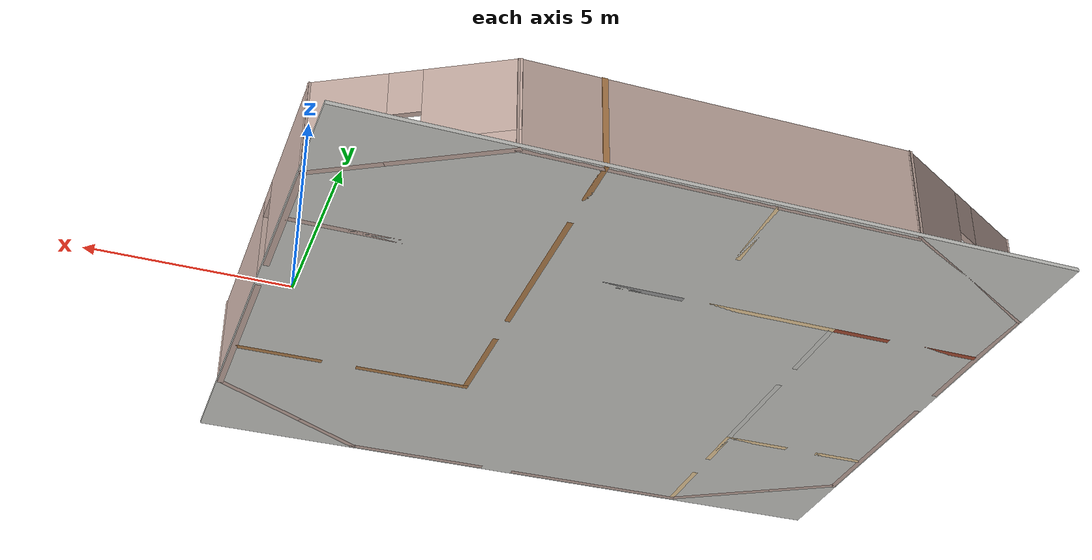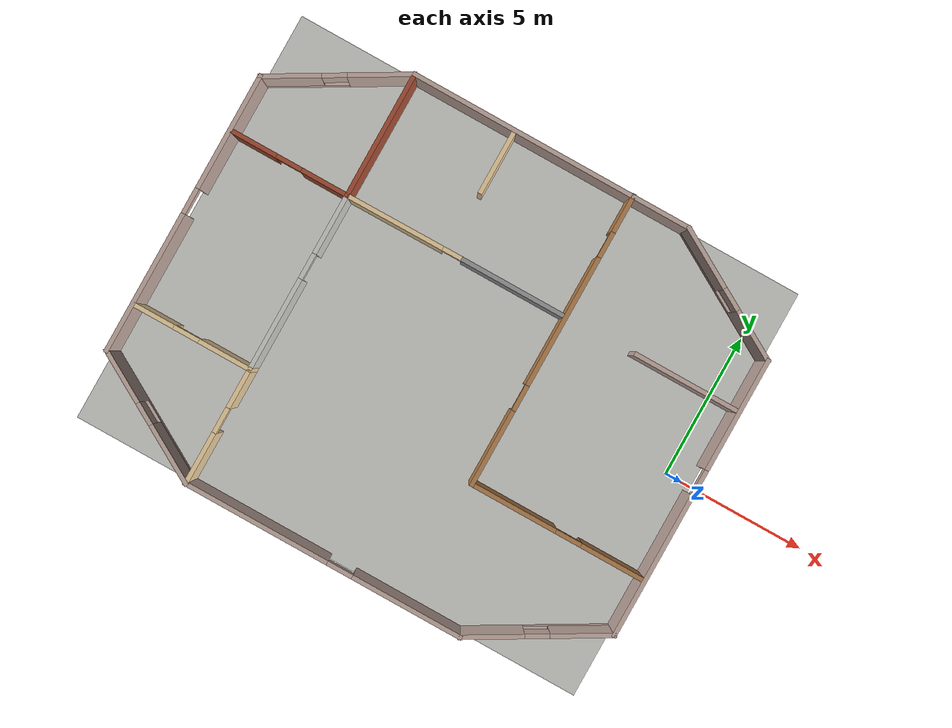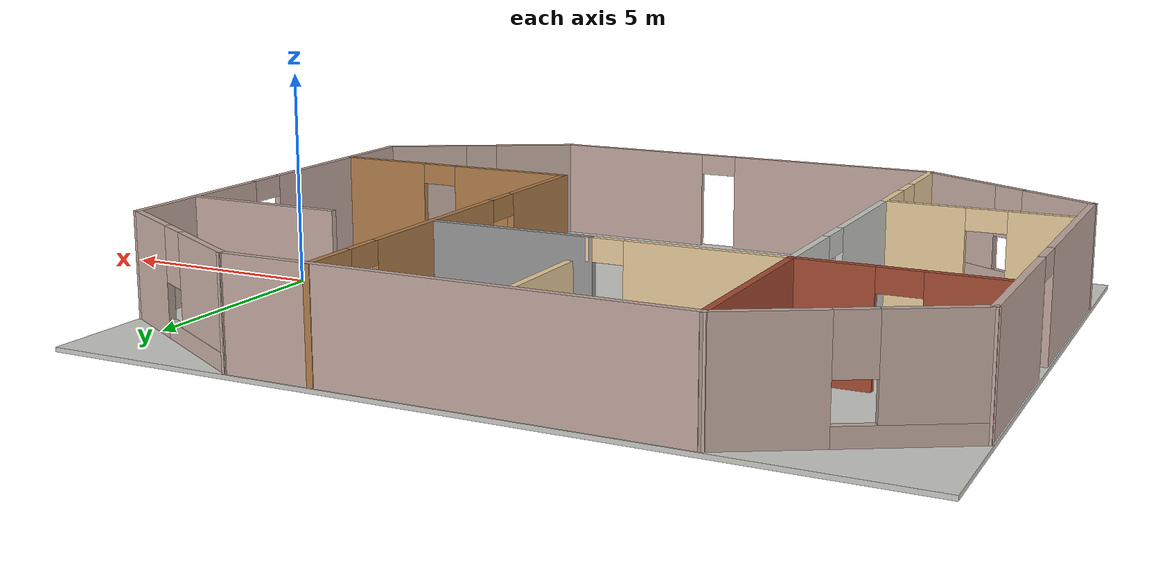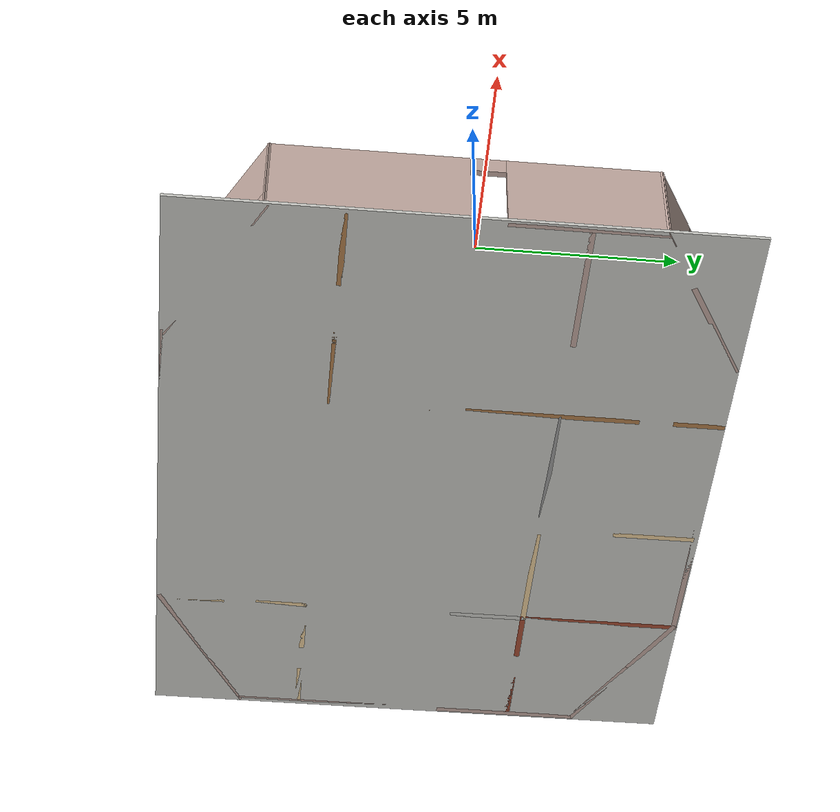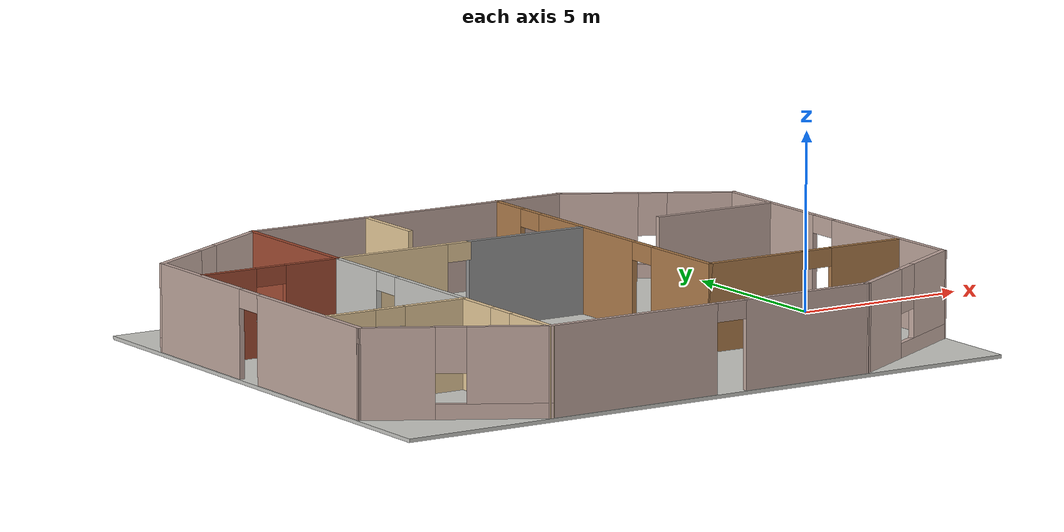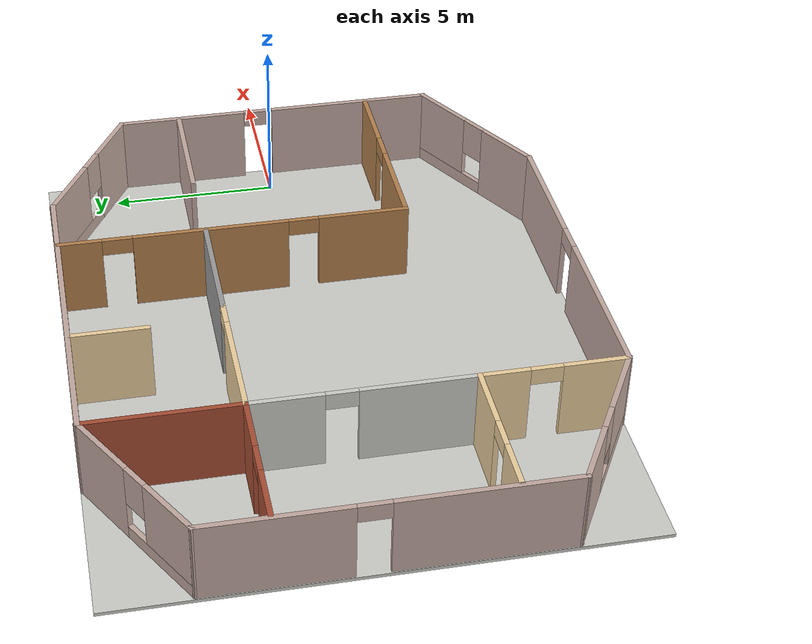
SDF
<?xml version='1.0'?>
<sdf version='1.6'>
  <model name='Pentagon'>
    <pose frame=''>-8.32743 -0.276895 0 0 -0 0</pose>
    <link name='Floor_16'>
      <collision name='Floor_16_Collision'>
        <geometry>
          <box>
            <size>18.4553 14.9049 0.1</size>
          </box>
        </geometry>
        <pose frame=''>0 0 0.05 0 -0 0</pose>
      </collision>
      <visual name='Floor_16_Visual'>
        <pose frame=''>0 0 0.05 0 -0 0</pose>
        <geometry>
          <box>
            <size>18.4553 14.9049 0.1</size>
          </box>
        </geometry>
        <material>
          <script>
            <uri>file://media/materials/scripts/gazebo.material</uri>
            <name>Gazebo/CeilingTiled</name>
          </script>
          <ambient>1 1 1 1</ambient>
        </material>
      </visual>
      <pose frame=''>1e-06 0 0 0 -0 0</pose>
    </link>
    <link name='Wall_22'>
      <pose frame=''>-9.12522 0 0 0 0 -1.5708</pose>
      <visual name='Wall_22_Visual_0'>
        <pose frame=''>-2.94929 0 1.25 0 -0 0</pose>
        <geometry>
          <box>
            <size>4.10142 0.15 2.5</size>
          </box>
        </geometry>
        <material>
          <script>
            <uri>file://media/materials/scripts/gazebo.material</uri>
            <name>Gazebo/Grey</name>
          </script>
          <ambient>0.760784 0.662745 0.627451 1</ambient>
        </material>
      </visual>
      <collision name='Wall_22_Collision_0'>
        <geometry>
          <box>
            <size>4.10142 0.15 2.5</size>
          </box>
        </geometry>
        <pose frame=''>-2.94929 0 1.25 0 -0 0</pose>
      </collision>
      <visual name='Wall_22_Visual_1'>
        <pose frame=''>2.50071 0 1.25 0 -0 0</pose>
        <geometry>
          <box>
            <size>4.99857 0.15 2.5</size>
          </box>
        </geometry>
        <material>
          <script>
            <uri>file://media/materials/scripts/gazebo.material</uri>
            <name>Gazebo/Grey</name>
          </script>
          <ambient>0.760784 0.662745 0.627451 1</ambient>
        </material>
      </visual>
      <collision name='Wall_22_Collision_1'>
        <geometry>
          <box>
            <size>4.99857 0.15 2.5</size>
          </box>
        </geometry>
        <pose frame=''>2.50071 0 1.25 0 -0 0</pose>
      </collision>
      <visual name='Wall_22_Visual_2'>
        <pose frame=''>-0.448575 0 2.25 0 -0 0</pose>
        <geometry>
          <box>
            <size>0.9 0.15 0.5</size>
          </box>
        </geometry>
        <material>
          <script>
            <uri>file://media/materials/scripts/gazebo.material</uri>
            <name>Gazebo/Grey</name>
          </script>
          <ambient>0.760784 0.662745 0.627451 1</ambient>
        </material>
      </visual>
      <collision name='Wall_22_Collision_2'>
        <geometry>
          <box>
            <size>0.9 0.15 0.5</size>
          </box>
        </geometry>
        <pose frame=''>-0.448575 0 2.25 0 -0 0</pose>
      </collision>
    </link>
    <link name='Wall_24'>
      <pose frame=''>-7.02511 -6.1375 0 0 0 -0.523599</pose>
      <visual name='Wall_24_Visual_0'>
        <pose frame=''>-1.50611 0 1.25 0 -0 0</pose>
        <geometry>
          <box>
            <size>1.98778 0.15 2.5</size>
          </box>
        </geometry>
        <material>
          <script>
            <uri>file://media/materials/scripts/gazebo.material</uri>
            <name>Gazebo/Grey</name>
          </script>
          <ambient>0.760784 0.662745 0.627451 1</ambient>
        </material>
      </visual>
      <collision name='Wall_24_Collision_0'>
        <geometry>
          <box>
            <size>1.98778 0.15 2.5</size>
          </box>
        </geometry>
        <pose frame=''>-1.50611 0 1.25 0 -0 0</pose>
      </collision>
      <visual name='Wall_24_Visual_1'>
        <pose frame=''>0.993891 0 0.25 0 -0 0</pose>
        <geometry>
          <box>
            <size>3.01222 0.15 0.5</size>
          </box>
        </geometry>
        <material>
          <script>
            <uri>file://media/materials/scripts/gazebo.material</uri>
            <name>Gazebo/Grey</name>
          </script>
          <ambient>0.760784 0.662745 0.627451 1</ambient>
        </material>
      </visual>
      <collision name='Wall_24_Collision_1'>
        <geometry>
          <box>
            <size>3.01222 0.15 0.5</size>
          </box>
        </geometry>
        <pose frame=''>0.993891 0 0.25 0 -0 0</pose>
      </collision>
      <visual name='Wall_24_Visual_2'>
        <pose frame=''>1.39389 0 1.5 0 -0 0</pose>
        <geometry>
          <box>
            <size>2.21222 0.15 2</size>
          </box>
        </geometry>
        <material>
          <script>
            <uri>file://media/materials/scripts/gazebo.material</uri>
            <name>Gazebo/Grey</name>
          </script>
          <ambient>0.760784 0.662745 0.627451 1</ambient>
        </material>
      </visual>
      <collision name='Wall_24_Collision_2'>
        <geometry>
          <box>
            <size>2.21222 0.15 2</size>
          </box>
        </geometry>
        <pose frame=''>1.39389 0 1.5 0 -0 0</pose>
      </collision>
      <visual name='Wall_24_Visual_3'>
        <pose frame=''>-0.112218 0 1.9 0 -0 0</pose>
        <geometry>
          <box>
            <size>0.8 0.15 1.2</size>
          </box>
        </geometry>
        <material>
          <script>
            <uri>file://media/materials/scripts/gazebo.material</uri>
            <name>Gazebo/Grey</name>
          </script>
          <ambient>0.760784 0.662745 0.627451 1</ambient>
        </material>
      </visual>
      <collision name='Wall_24_Collision_3'>
        <geometry>
          <box>
            <size>0.8 0.15 1.2</size>
          </box>
        </geometry>
        <pose frame=''>-0.112218 0 1.9 0 -0 0</pose>
      </collision>
    </link>
    <link name='Wall_25'>
      <pose frame=''>1e-06 -7.35 0 0 -0 0</pose>
      <visual name='Wall_25_Visual_0'>
        <pose frame=''>-2.41987 0 1.25 0 -0 0</pose>
        <geometry>
          <box>
            <size>5.16027 0.15 2.5</size>
          </box>
        </geometry>
        <material>
          <script>
            <uri>file://media/materials/scripts/gazebo.material</uri>
            <name>Gazebo/Grey</name>
          </script>
          <ambient>0.760784 0.662745 0.627451 1</ambient>
        </material>
      </visual>
      <collision name='Wall_25_Collision_0'>
        <geometry>
          <box>
            <size>5.16027 0.15 2.5</size>
          </box>
        </geometry>
        <pose frame=''>-2.41987 0 1.25 0 -0 0</pose>
      </collision>
      <visual name='Wall_25_Visual_1'>
        <pose frame=''>3.03013 0 1.25 0 -0 0</pose>
        <geometry>
          <box>
            <size>3.93973 0.15 2.5</size>
          </box>
        </geometry>
        <material>
          <script>
            <uri>file://media/materials/scripts/gazebo.material</uri>
            <name>Gazebo/Grey</name>
          </script>
          <ambient>0.760784 0.662745 0.627451 1</ambient>
        </material>
      </visual>
      <collision name='Wall_25_Collision_1'>
        <geometry>
          <box>
            <size>3.93973 0.15 2.5</size>
          </box>
        </geometry>
        <pose frame=''>3.03013 0 1.25 0 -0 0</pose>
      </collision>
      <visual name='Wall_25_Visual_2'>
        <pose frame=''>0.610269 0 2.25 0 -0 0</pose>
        <geometry>
          <box>
            <size>0.9 0.15 0.5</size>
          </box>
        </geometry>
        <material>
          <script>
            <uri>file://media/materials/scripts/gazebo.material</uri>
            <name>Gazebo/Grey</name>
          </script>
          <ambient>0.760784 0.662745 0.627451 1</ambient>
        </material>
      </visual>
      <collision name='Wall_25_Collision_2'>
        <geometry>
          <box>
            <size>0.9 0.15 0.5</size>
          </box>
        </geometry>
        <pose frame=''>0.610269 0 2.25 0 -0 0</pose>
      </collision>
    </link>
    <link name='Wall_26'>
      <pose frame=''>7.02511 -6.1375 0 0 -0 0.523599</pose>
      <visual name='Wall_26_Visual_0'>
        <pose frame=''>-1.44732 0 1.25 0 -0 0</pose>
        <geometry>
          <box>
            <size>2.10536 0.15 2.5</size>
          </box>
        </geometry>
        <material>
          <script>
            <uri>file://media/materials/scripts/gazebo.material</uri>
            <name>Gazebo/Grey</name>
          </script>
          <ambient>0.760784 0.662745 0.627451 1</ambient>
        </material>
      </visual>
      <collision name='Wall_26_Collision_0'>
        <geometry>
          <box>
            <size>2.10536 0.15 2.5</size>
          </box>
        </geometry>
        <pose frame=''>-1.44732 0 1.25 0 -0 0</pose>
      </collision>
      <visual name='Wall_26_Visual_1'>
        <pose frame=''>1.05268 0 0.25 0 -0 0</pose>
        <geometry>
          <box>
            <size>2.89464 0.15 0.5</size>
          </box>
        </geometry>
        <material>
          <script>
            <uri>file://media/materials/scripts/gazebo.material</uri>
            <name>Gazebo/Grey</name>
          </script>
          <ambient>0.760784 0.662745 0.627451 1</ambient>
        </material>
      </visual>
      <collision name='Wall_26_Collision_1'>
        <geometry>
          <box>
            <size>2.89464 0.15 0.5</size>
          </box>
        </geometry>
        <pose frame=''>1.05268 0 0.25 0 -0 0</pose>
      </collision>
      <visual name='Wall_26_Visual_2'>
        <pose frame=''>1.45268 0 1.5 0 -0 0</pose>
        <geometry>
          <box>
            <size>2.09464 0.15 2</size>
          </box>
        </geometry>
        <material>
          <script>
            <uri>file://media/materials/scripts/gazebo.material</uri>
            <name>Gazebo/Grey</name>
          </script>
          <ambient>0.760784 0.662745 0.627451 1</ambient>
        </material>
      </visual>
      <collision name='Wall_26_Collision_2'>
        <geometry>
          <box>
            <size>2.09464 0.15 2</size>
          </box>
        </geometry>
        <pose frame=''>1.45268 0 1.5 0 -0 0</pose>
      </collision>
      <visual name='Wall_26_Visual_3'>
        <pose frame=''>0.005362 0 1.9 0 -0 0</pose>
        <geometry>
          <box>
            <size>0.8 0.15 1.2</size>
          </box>
        </geometry>
        <material>
          <script>
            <uri>file://media/materials/scripts/gazebo.material</uri>
            <name>Gazebo/Grey</name>
          </script>
          <ambient>0.760784 0.662745 0.627451 1</ambient>
        </material>
      </visual>
      <collision name='Wall_26_Collision_3'>
        <geometry>
          <box>
            <size>0.8 0.15 1.2</size>
          </box>
        </geometry>
        <pose frame=''>0.005362 0 1.9 0 -0 0</pose>
      </collision>
    </link>
    <link name='Wall_27'>
      <pose frame=''>9.12522 0 0 0 -0 1.5708</pose>
      <visual name='Wall_27_Visual_0'>
        <pose frame=''>-2.45419 0 1.25 0 -0 0</pose>
        <geometry>
          <box>
            <size>5.09162 0.15 2.5</size>
          </box>
        </geometry>
        <material>
          <script>
            <uri>file://media/materials/scripts/gazebo.material</uri>
            <name>Gazebo/Grey</name>
          </script>
          <ambient>0.760784 0.662745 0.627451 1</ambient>
        </material>
      </visual>
      <collision name='Wall_27_Collision_0'>
        <geometry>
          <box>
            <size>5.09162 0.15 2.5</size>
          </box>
        </geometry>
        <pose frame=''>-2.45419 0 1.25 0 -0 0</pose>
      </collision>
      <visual name='Wall_27_Visual_1'>
        <pose frame=''>2.99581 0 1.25 0 -0 0</pose>
        <geometry>
          <box>
            <size>4.00838 0.15 2.5</size>
          </box>
        </geometry>
        <material>
          <script>
            <uri>file://media/materials/scripts/gazebo.material</uri>
            <name>Gazebo/Grey</name>
          </script>
          <ambient>0.760784 0.662745 0.627451 1</ambient>
        </material>
      </visual>
      <collision name='Wall_27_Collision_1'>
        <geometry>
          <box>
            <size>4.00838 0.15 2.5</size>
          </box>
        </geometry>
        <pose frame=''>2.99581 0 1.25 0 -0 0</pose>
      </collision>
      <visual name='Wall_27_Visual_2'>
        <pose frame=''>0.541623 0 2.25 0 -0 0</pose>
        <geometry>
          <box>
            <size>0.9 0.15 0.5</size>
          </box>
        </geometry>
        <material>
          <script>
            <uri>file://media/materials/scripts/gazebo.material</uri>
            <name>Gazebo/Grey</name>
          </script>
          <ambient>0.760784 0.662745 0.627451 1</ambient>
        </material>
      </visual>
      <collision name='Wall_27_Collision_2'>
        <geometry>
          <box>
            <size>0.9 0.15 0.5</size>
          </box>
        </geometry>
        <pose frame=''>0.541623 0 2.25 0 -0 0</pose>
      </collision>
    </link>
    <link name='Wall_28'>
      <pose frame=''>7.02511 6.1375 0 0 -0 2.61799</pose>
      <visual name='Wall_28_Visual_0'>
        <pose frame=''>-1.53931 0 1.25 0 -0 0</pose>
        <geometry>
          <box>
            <size>1.92137 0.15 2.5</size>
          </box>
        </geometry>
        <material>
          <script>
            <uri>file://media/materials/scripts/gazebo.material</uri>
            <name>Gazebo/Grey</name>
          </script>
          <ambient>0.760784 0.662745 0.627451 1</ambient>
        </material>
      </visual>
      <collision name='Wall_28_Collision_0'>
        <geometry>
          <box>
            <size>1.92137 0.15 2.5</size>
          </box>
        </geometry>
        <pose frame=''>-1.53931 0 1.25 0 -0 0</pose>
      </collision>
      <visual name='Wall_28_Visual_1'>
        <pose frame=''>0.960687 0 0.25 0 -0 0</pose>
        <geometry>
          <box>
            <size>3.07863 0.15 0.5</size>
          </box>
        </geometry>
        <material>
          <script>
            <uri>file://media/materials/scripts/gazebo.material</uri>
            <name>Gazebo/Grey</name>
          </script>
          <ambient>0.760784 0.662745 0.627451 1</ambient>
        </material>
      </visual>
      <collision name='Wall_28_Collision_1'>
        <geometry>
          <box>
            <size>3.07863 0.15 0.5</size>
          </box>
        </geometry>
        <pose frame=''>0.960687 0 0.25 0 -0 0</pose>
      </collision>
      <visual name='Wall_28_Visual_2'>
        <pose frame=''>1.36069 0 1.5 0 -0 0</pose>
        <geometry>
          <box>
            <size>2.27863 0.15 2</size>
          </box>
        </geometry>
        <material>
          <script>
            <uri>file://media/materials/scripts/gazebo.material</uri>
            <name>Gazebo/Grey</name>
          </script>
          <ambient>0.760784 0.662745 0.627451 1</ambient>
        </material>
      </visual>
      <collision name='Wall_28_Collision_2'>
        <geometry>
          <box>
            <size>2.27863 0.15 2</size>
          </box>
        </geometry>
        <pose frame=''>1.36069 0 1.5 0 -0 0</pose>
      </collision>
      <visual name='Wall_28_Visual_3'>
        <pose frame=''>-0.178626 0 1.9 0 -0 0</pose>
        <geometry>
          <box>
            <size>0.8 0.15 1.2</size>
          </box>
        </geometry>
        <material>
          <script>
            <uri>file://media/materials/scripts/gazebo.material</uri>
            <name>Gazebo/Grey</name>
          </script>
          <ambient>0.760784 0.662745 0.627451 1</ambient>
        </material>
      </visual>
      <collision name='Wall_28_Collision_3'>
        <geometry>
          <box>
            <size>0.8 0.15 1.2</size>
          </box>
        </geometry>
        <pose frame=''>-0.178626 0 1.9 0 -0 0</pose>
      </collision>
    </link>
    <link name='Wall_29'>
      <collision name='Wall_29_Collision'>
        <geometry>
          <box>
            <size>10 0.15 2.5</size>
          </box>
        </geometry>
        <pose frame=''>0 0 1.25 0 -0 0</pose>
      </collision>
      <visual name='Wall_29_Visual'>
        <pose frame=''>0 0 1.25 0 -0 0</pose>
        <geometry>
          <box>
            <size>10 0.15 2.5</size>
          </box>
        </geometry>
        <material>
          <script>
            <uri>file://media/materials/scripts/gazebo.material</uri>
            <name>Gazebo/Grey</name>
          </script>
          <ambient>0.760784 0.662745 0.627451 1</ambient>
        </material>
      </visual>
      <pose frame=''>1e-06 7.35 0 0 -0 3.14159</pose>
    </link>
    <link name='Wall_30'>
      <pose frame=''>-7.02511 6.1375 0 0 0 -2.61799</pose>
      <visual name='Wall_30_Visual_0'>
        <pose frame=''>-1.39719 0 1.25 0 -0 0</pose>
        <geometry>
          <box>
            <size>2.20562 0.15 2.5</size>
          </box>
        </geometry>
        <material>
          <script>
            <uri>file://media/materials/scripts/gazebo.material</uri>
            <name>Gazebo/Grey</name>
          </script>
          <ambient>0.760784 0.662745 0.627451 1</ambient>
        </material>
      </visual>
      <collision name='Wall_30_Collision_0'>
        <geometry>
          <box>
            <size>2.20562 0.15 2.5</size>
          </box>
        </geometry>
        <pose frame=''>-1.39719 0 1.25 0 -0 0</pose>
      </collision>
      <visual name='Wall_30_Visual_1'>
        <pose frame=''>1.10281 0 0.25 0 -0 0</pose>
        <geometry>
          <box>
            <size>2.79438 0.15 0.5</size>
          </box>
        </geometry>
        <material>
          <script>
            <uri>file://media/materials/scripts/gazebo.material</uri>
            <name>Gazebo/Grey</name>
          </script>
          <ambient>0.760784 0.662745 0.627451 1</ambient>
        </material>
      </visual>
      <collision name='Wall_30_Collision_1'>
        <geometry>
          <box>
            <size>2.79438 0.15 0.5</size>
          </box>
        </geometry>
        <pose frame=''>1.10281 0 0.25 0 -0 0</pose>
      </collision>
      <visual name='Wall_30_Visual_2'>
        <pose frame=''>1.50281 0 1.5 0 -0 0</pose>
        <geometry>
          <box>
            <size>1.99438 0.15 2</size>
          </box>
        </geometry>
        <material>
          <script>
            <uri>file://media/materials/scripts/gazebo.material</uri>
            <name>Gazebo/Grey</name>
          </script>
          <ambient>0.760784 0.662745 0.627451 1</ambient>
        </material>
      </visual>
      <collision name='Wall_30_Collision_2'>
        <geometry>
          <box>
            <size>1.99438 0.15 2</size>
          </box>
        </geometry>
        <pose frame=''>1.50281 0 1.5 0 -0 0</pose>
      </collision>
      <visual name='Wall_30_Visual_3'>
        <pose frame=''>0.10562 0 1.9 0 -0 0</pose>
        <geometry>
          <box>
            <size>0.8 0.15 1.2</size>
          </box>
        </geometry>
        <material>
          <script>
            <uri>file://media/materials/scripts/gazebo.material</uri>
            <name>Gazebo/Grey</name>
          </script>
          <ambient>0.760784 0.662745 0.627451 1</ambient>
        </material>
      </visual>
      <collision name='Wall_30_Collision_3'>
        <geometry>
          <box>
            <size>0.8 0.15 1.2</size>
          </box>
        </geometry>
        <pose frame=''>0.10562 0 1.9 0 -0 0</pose>
      </collision>
    </link>
    <link name='Wall_32'>
      <collision name='Wall_32_Collision'>
        <geometry>
          <box>
            <size>4.5 0.15 2.5</size>
          </box>
        </geometry>
        <pose frame=''>0 0 1.25 0 -0 0</pose>
      </collision>
      <visual name='Wall_32_Visual'>
        <pose frame=''>0 0 1.25 0 -0 0</pose>
        <geometry>
          <box>
            <size>4.5 0.15 2.5</size>
          </box>
        </geometry>
        <material>
          <script>
            <uri>file://media/materials/scripts/gazebo.material</uri>
            <name>Gazebo/Bricks</name>
          </script>
          <ambient>1 1 1 1</ambient>
        </material>
      </visual>
      <pose frame=''>-4.925 5.175 0 0 0 -1.5708</pose>
    </link>
    <link name='Wall_33'>
      <pose frame=''>-6.975 3 0 0 -0 3.14159</pose>
      <visual name='Wall_33_Visual_0'>
        <pose frame=''>-1.27049 0 1.25 0 -0 0</pose>
        <geometry>
          <box>
            <size>1.70902 0.15 2.5</size>
          </box>
        </geometry>
        <material>
          <script>
            <uri>file://media/materials/scripts/gazebo.material</uri>
            <name>Gazebo/Bricks</name>
          </script>
          <ambient>1 1 1 1</ambient>
        </material>
      </visual>
      <collision name='Wall_33_Collision_0'>
        <geometry>
          <box>
            <size>1.70902 0.15 2.5</size>
          </box>
        </geometry>
        <pose frame=''>-1.27049 0 1.25 0 -0 0</pose>
      </collision>
      <visual name='Wall_33_Visual_1'>
        <pose frame=''>1.30451 0 1.25 0 -0 0</pose>
        <geometry>
          <box>
            <size>1.64098 0.15 2.5</size>
          </box>
        </geometry>
        <material>
          <script>
            <uri>file://media/materials/scripts/gazebo.material</uri>
            <name>Gazebo/Bricks</name>
          </script>
          <ambient>1 1 1 1</ambient>
        </material>
      </visual>
      <collision name='Wall_33_Collision_1'>
        <geometry>
          <box>
            <size>1.64098 0.15 2.5</size>
          </box>
        </geometry>
        <pose frame=''>1.30451 0 1.25 0 -0 0</pose>
      </collision>
      <visual name='Wall_33_Visual_2'>
        <pose frame=''>0.034019 0 2.25 0 -0 0</pose>
        <geometry>
          <box>
            <size>0.9 0.15 0.5</size>
          </box>
        </geometry>
        <material>
          <script>
            <uri>file://media/materials/scripts/gazebo.material</uri>
            <name>Gazebo/Bricks</name>
          </script>
          <ambient>1 1 1 1</ambient>
        </material>
      </visual>
      <collision name='Wall_33_Collision_2'>
        <geometry>
          <box>
            <size>0.9 0.15 0.5</size>
          </box>
        </geometry>
        <pose frame=''>0.034019 0 2.25 0 -0 0</pose>
      </collision>
    </link>
    <link name='Wall_35'>
      <pose frame=''>2.92425 2.19223 0 0 0 -1.5708</pose>
      <visual name='Wall_35_Visual_0'>
        <pose frame=''>-4.56341 0 1.25 0 -0 0</pose>
        <geometry>
          <box>
            <size>1.37318 0.15 2.5</size>
          </box>
        </geometry>
        <material>
          <script>
            <uri>file://media/materials/scripts/gazebo.material</uri>
            <name>Gazebo/Wood</name>
          </script>
          <ambient>1 1 1 1</ambient>
        </material>
      </visual>
      <collision name='Wall_35_Collision_0'>
        <geometry>
          <box>
            <size>1.37318 0.15 2.5</size>
          </box>
        </geometry>
        <pose frame=''>-4.56341 0 1.25 0 -0 0</pose>
      </collision>
      <visual name='Wall_35_Visual_1'>
        <pose frame=''>-0.6737 0 1.25 0 -0 0</pose>
        <geometry>
          <box>
            <size>4.60624 0.15 2.5</size>
          </box>
        </geometry>
        <material>
          <script>
            <uri>file://media/materials/scripts/gazebo.material</uri>
            <name>Gazebo/Wood</name>
          </script>
          <ambient>1 1 1 1</ambient>
        </material>
      </visual>
      <collision name='Wall_35_Collision_1'>
        <geometry>
          <box>
            <size>4.60624 0.15 2.5</size>
          </box>
        </geometry>
        <pose frame=''>-0.6737 0 1.25 0 -0 0</pose>
      </collision>
      <visual name='Wall_35_Visual_2'>
        <pose frame=''>3.88971 0 1.25 0 -0 0</pose>
        <geometry>
          <box>
            <size>2.72058 0.15 2.5</size>
          </box>
        </geometry>
        <material>
          <script>
            <uri>file://media/materials/scripts/gazebo.material</uri>
            <name>Gazebo/Wood</name>
          </script>
          <ambient>1 1 1 1</ambient>
        </material>
      </visual>
      <collision name='Wall_35_Collision_2'>
        <geometry>
          <box>
            <size>2.72058 0.15 2.5</size>
          </box>
        </geometry>
        <pose frame=''>3.88971 0 1.25 0 -0 0</pose>
      </collision>
      <visual name='Wall_35_Visual_3'>
        <pose frame=''>-3.42682 0 2.25 0 -0 0</pose>
        <geometry>
          <box>
            <size>0.9 0.15 0.5</size>
          </box>
        </geometry>
        <material>
          <script>
            <uri>file://media/materials/scripts/gazebo.material</uri>
            <name>Gazebo/Wood</name>
          </script>
          <ambient>1 1 1 1</ambient>
        </material>
      </visual>
      <collision name='Wall_35_Collision_3'>
        <geometry>
          <box>
            <size>0.9 0.15 0.5</size>
          </box>
        </geometry>
        <pose frame=''>-3.42682 0 2.25 0 -0 0</pose>
      </collision>
      <visual name='Wall_35_Visual_4'>
        <pose frame=''>2.07942 0 2.25 0 -0 0</pose>
        <geometry>
          <box>
            <size>0.9 0.15 0.5</size>
          </box>
        </geometry>
        <material>
          <script>
            <uri>file://media/materials/scripts/gazebo.material</uri>
            <name>Gazebo/Wood</name>
          </script>
          <ambient>1 1 1 1</ambient>
        </material>
      </visual>
      <collision name='Wall_35_Collision_4'>
        <geometry>
          <box>
            <size>0.9 0.15 0.5</size>
          </box>
        </geometry>
        <pose frame=''>2.07942 0 2.25 0 -0 0</pose>
      </collision>
    </link>
    <link name='Wall_36'>
      <pose frame=''>5.97425 -2.98277 0 0 -0 0</pose>
      <visual name='Wall_36_Visual_0'>
        <pose frame=''>-1.58415 0 1.25 0 -0 0</pose>
        <geometry>
          <box>
            <size>3.0817 0.15 2.5</size>
          </box>
        </geometry>
        <material>
          <script>
            <uri>file://media/materials/scripts/gazebo.material</uri>
            <name>Gazebo/Wood</name>
          </script>
          <ambient>1 1 1 1</ambient>
        </material>
      </visual>
      <collision name='Wall_36_Collision_0'>
        <geometry>
          <box>
            <size>3.0817 0.15 2.5</size>
          </box>
        </geometry>
        <pose frame=''>-1.58415 0 1.25 0 -0 0</pose>
      </collision>
      <visual name='Wall_36_Visual_1'>
        <pose frame=''>1.99085 0 1.25 0 -0 0</pose>
        <geometry>
          <box>
            <size>2.2683 0.15 2.5</size>
          </box>
        </geometry>
        <material>
          <script>
            <uri>file://media/materials/scripts/gazebo.material</uri>
            <name>Gazebo/Wood</name>
          </script>
          <ambient>1 1 1 1</ambient>
        </material>
      </visual>
      <collision name='Wall_36_Collision_1'>
        <geometry>
          <box>
            <size>2.2683 0.15 2.5</size>
          </box>
        </geometry>
        <pose frame=''>1.99085 0 1.25 0 -0 0</pose>
      </collision>
      <visual name='Wall_36_Visual_2'>
        <pose frame=''>0.406696 0 2.25 0 -0 0</pose>
        <geometry>
          <box>
            <size>0.9 0.15 0.5</size>
          </box>
        </geometry>
        <material>
          <script>
            <uri>file://media/materials/scripts/gazebo.material</uri>
            <name>Gazebo/Wood</name>
          </script>
          <ambient>1 1 1 1</ambient>
        </material>
      </visual>
      <collision name='Wall_36_Collision_2'>
        <geometry>
          <box>
            <size>0.9 0.15 0.5</size>
          </box>
        </geometry>
        <pose frame=''>0.406696 0 2.25 0 -0 0</pose>
      </collision>
    </link>
    <link name='Wall_40'>
      <pose frame=''>-4.925 -5.3 0 0 -0 1.5708</pose>
      <visual name='Wall_40_Visual_0'>
        <pose frame=''>-1.179 0 1.25 0 -0 0</pose>
        <geometry>
          <box>
            <size>1.89201 0.15 2.5</size>
          </box>
        </geometry>
        <material>
          <script>
            <uri>file://media/materials/scripts/gazebo.material</uri>
            <name>Gazebo/Grey</name>
          </script>
          <ambient>0.921569 0.807843 0.615686 1</ambient>
        </material>
      </visual>
      <collision name='Wall_40_Collision_0'>
        <geometry>
          <box>
            <size>1.89201 0.15 2.5</size>
          </box>
        </geometry>
        <pose frame=''>-1.179 0 1.25 0 -0 0</pose>
      </collision>
      <visual name='Wall_40_Visual_1'>
        <pose frame=''>1.396 0 1.25 0 -0 0</pose>
        <geometry>
          <box>
            <size>1.45799 0.15 2.5</size>
          </box>
        </geometry>
        <material>
          <script>
            <uri>file://media/materials/scripts/gazebo.material</uri>
            <name>Gazebo/Grey</name>
          </script>
          <ambient>0.921569 0.807843 0.615686 1</ambient>
        </material>
      </visual>
      <collision name='Wall_40_Collision_1'>
        <geometry>
          <box>
            <size>1.45799 0.15 2.5</size>
          </box>
        </geometry>
        <pose frame=''>1.396 0 1.25 0 -0 0</pose>
      </collision>
      <visual name='Wall_40_Visual_2'>
        <pose frame=''>0.21701 0 2.25 0 -0 0</pose>
        <geometry>
          <box>
            <size>0.9 0.15 0.5</size>
          </box>
        </geometry>
        <material>
          <script>
            <uri>file://media/materials/scripts/gazebo.material</uri>
            <name>Gazebo/Grey</name>
          </script>
          <ambient>0.921569 0.807843 0.615686 1</ambient>
        </material>
      </visual>
      <collision name='Wall_40_Collision_2'>
        <geometry>
          <box>
            <size>0.9 0.15 0.5</size>
          </box>
        </geometry>
        <pose frame=''>0.21701 0 2.25 0 -0 0</pose>
      </collision>
    </link>
    <link name='Wall_41'>
      <pose frame=''>-6.975 -3.25 0 0 -0 3.14159</pose>
      <visual name='Wall_41_Visual_0'>
        <pose frame=''>-1.17444 0 1.25 0 -0 0</pose>
        <geometry>
          <box>
            <size>1.90112 0.15 2.5</size>
          </box>
        </geometry>
        <material>
          <script>
            <uri>file://media/materials/scripts/gazebo.material</uri>
            <name>Gazebo/Grey</name>
          </script>
          <ambient>0.921569 0.807843 0.615686 1</ambient>
        </material>
      </visual>
      <collision name='Wall_41_Collision_0'>
        <geometry>
          <box>
            <size>1.90112 0.15 2.5</size>
          </box>
        </geometry>
        <pose frame=''>-1.17444 0 1.25 0 -0 0</pose>
      </collision>
      <visual name='Wall_41_Visual_1'>
        <pose frame=''>1.40056 0 1.25 0 -0 0</pose>
        <geometry>
          <box>
            <size>1.44888 0.15 2.5</size>
          </box>
        </geometry>
        <material>
          <script>
            <uri>file://media/materials/scripts/gazebo.material</uri>
            <name>Gazebo/Grey</name>
          </script>
          <ambient>0.921569 0.807843 0.615686 1</ambient>
        </material>
      </visual>
      <collision name='Wall_41_Collision_1'>
        <geometry>
          <box>
            <size>1.44888 0.15 2.5</size>
          </box>
        </geometry>
        <pose frame=''>1.40056 0 1.25 0 -0 0</pose>
      </collision>
      <visual name='Wall_41_Visual_2'>
        <pose frame=''>0.22612 0 2.25 0 -0 0</pose>
        <geometry>
          <box>
            <size>0.9 0.15 0.5</size>
          </box>
        </geometry>
        <material>
          <script>
            <uri>file://media/materials/scripts/gazebo.material</uri>
            <name>Gazebo/Grey</name>
          </script>
          <ambient>0.921569 0.807843 0.615686 1</ambient>
        </material>
      </visual>
      <collision name='Wall_41_Collision_2'>
        <geometry>
          <box>
            <size>0.9 0.15 0.5</size>
          </box>
        </geometry>
        <pose frame=''>0.22612 0 2.25 0 -0 0</pose>
      </collision>
    </link>
    <link name='Wall_43'>
      <pose frame=''>-4.925 -0.05 0 0 0 -1.5708</pose>
      <visual name='Wall_43_Visual_0'>
        <pose frame=''>-2.03942 0 1.25 0 -0 0</pose>
        <geometry>
          <box>
            <size>2.17116 0.15 2.5</size>
          </box>
        </geometry>
        <material>
          <script>
            <uri>file://media/materials/scripts/gazebo.material</uri>
            <name>Gazebo/CeilingTiled</name>
          </script>
          <ambient>0.921569 0.807843 0.615686 1</ambient>
        </material>
      </visual>
      <collision name='Wall_43_Collision_0'>
        <geometry>
          <box>
            <size>2.17116 0.15 2.5</size>
          </box>
        </geometry>
        <pose frame=''>-2.03942 0 1.25 0 -0 0</pose>
      </collision>
      <visual name='Wall_43_Visual_1'>
        <pose frame=''>1.53558 0 1.25 0 -0 0</pose>
        <geometry>
          <box>
            <size>3.17884 0.15 2.5</size>
          </box>
        </geometry>
        <material>
          <script>
            <uri>file://media/materials/scripts/gazebo.material</uri>
            <name>Gazebo/CeilingTiled</name>
          </script>
          <ambient>0.921569 0.807843 0.615686 1</ambient>
        </material>
      </visual>
      <collision name='Wall_43_Collision_1'>
        <geometry>
          <box>
            <size>3.17884 0.15 2.5</size>
          </box>
        </geometry>
        <pose frame=''>1.53558 0 1.25 0 -0 0</pose>
      </collision>
      <visual name='Wall_43_Visual_2'>
        <pose frame=''>-0.503842 0 2.25 0 -0 0</pose>
        <geometry>
          <box>
            <size>0.9 0.15 0.5</size>
          </box>
        </geometry>
        <material>
          <script>
            <uri>file://media/materials/scripts/gazebo.material</uri>
            <name>Gazebo/CeilingTiled</name>
          </script>
          <ambient>0.921569 0.807843 0.615686 1</ambient>
        </material>
      </visual>
      <collision name='Wall_43_Collision_2'>
        <geometry>
          <box>
            <size>0.9 0.15 0.5</size>
          </box>
        </geometry>
        <pose frame=''>-0.503842 0 2.25 0 -0 0</pose>
      </collision>
    </link>
    <link name='Wall_47'>
      <collision name='Wall_47_Collision'>
        <geometry>
          <box>
            <size>3.75 0.15 2.5</size>
          </box>
        </geometry>
        <pose frame=''>0 0 1.25 0 -0 0</pose>
      </collision>
      <visual name='Wall_47_Visual'>
        <pose frame=''>0 0 1.25 0 -0 0</pose>
        <geometry>
          <box>
            <size>3.75 0.15 2.5</size>
          </box>
        </geometry>
        <material>
          <script>
            <uri>file://media/materials/scripts/gazebo.material</uri>
            <name>Gazebo/Grey</name>
          </script>
          <ambient>0.760784 0.662745 0.627451 1</ambient>
        </material>
      </visual>
      <pose frame=''>7.23264 3.0846 0 0 -0 0</pose>
    </link>
    <link name='Wall_49'>
      <collision name='Wall_49_Collision'>
        <geometry>
          <box>
            <size>3.75 0.15 2.5</size>
          </box>
        </geometry>
        <pose frame=''>0 0 1.25 0 -0 0</pose>
      </collision>
      <visual name='Wall_49_Visual'>
        <pose frame=''>0 0 1.25 0 -0 0</pose>
        <geometry>
          <box>
            <size>3.75 0.15 2.5</size>
          </box>
        </geometry>
        <material>
          <script>
            <uri>file://media/materials/scripts/gazebo.material</uri>
            <name>Gazebo/Grey</name>
          </script>
          <ambient>1 1 1 1</ambient>
        </material>
      </visual>
      <pose frame=''>1.05342 3.02342 0 0 -0 0</pose>
    </link>
    <link name='Wall_55'>
      <pose frame=''>-2.83579 3.01171 0 0 -0 0.005605</pose>
      <visual name='Wall_55_Visual_0'>
        <pose frame=''>-0.410924 0 1.25 0 -0 0</pose>
        <geometry>
          <box>
            <size>3.50664 0.15 2.5</size>
          </box>
        </geometry>
        <material>
          <script>
            <uri>file://media/materials/scripts/gazebo.material</uri>
            <name>Gazebo/Grey</name>
          </script>
          <ambient>0.921569 0.807843 0.615686 1</ambient>
        </material>
      </visual>
      <collision name='Wall_55_Collision_0'>
        <geometry>
          <box>
            <size>3.50664 0.15 2.5</size>
          </box>
        </geometry>
        <pose frame=''>-0.410924 0 1.25 0 -0 0</pose>
      </collision>
      <visual name='Wall_55_Visual_1'>
        <pose frame=''>1.75332 0 2.25 0 -0 0</pose>
        <geometry>
          <box>
            <size>0.821847 0.15 0.5</size>
          </box>
        </geometry>
        <material>
          <script>
            <uri>file://media/materials/scripts/gazebo.material</uri>
            <name>Gazebo/Grey</name>
          </script>
          <ambient>0.921569 0.807843 0.615686 1</ambient>
        </material>
      </visual>
      <collision name='Wall_55_Collision_1'>
        <geometry>
          <box>
            <size>0.821847 0.15 0.5</size>
          </box>
        </geometry>
        <pose frame=''>1.75332 0 2.25 0 -0 0</pose>
      </collision>
    </link>
    <link name='Wall_58'>
      <collision name='Wall_58_Collision'>
        <geometry>
          <box>
            <size>2.25 0.15 2.5</size>
          </box>
        </geometry>
        <pose frame=''>0 0 1.25 0 -0 0</pose>
      </collision>
      <visual name='Wall_58_Visual'>
        <pose frame=''>0 0 1.25 0 -0 0</pose>
        <geometry>
          <box>
            <size>2.25 0.15 2.5</size>
          </box>
        </geometry>
        <material>
          <script>
            <uri>file://media/materials/scripts/gazebo.material</uri>
            <name>Gazebo/Grey</name>
          </script>
          <ambient>0.921569 0.807843 0.615686 1</ambient>
        </material>
      </visual>
      <pose frame=''>-1.32445 6.20963 0 0 0 -1.5708</pose>
    </link>
    <static>1</static>
  </model>
</sdf>
